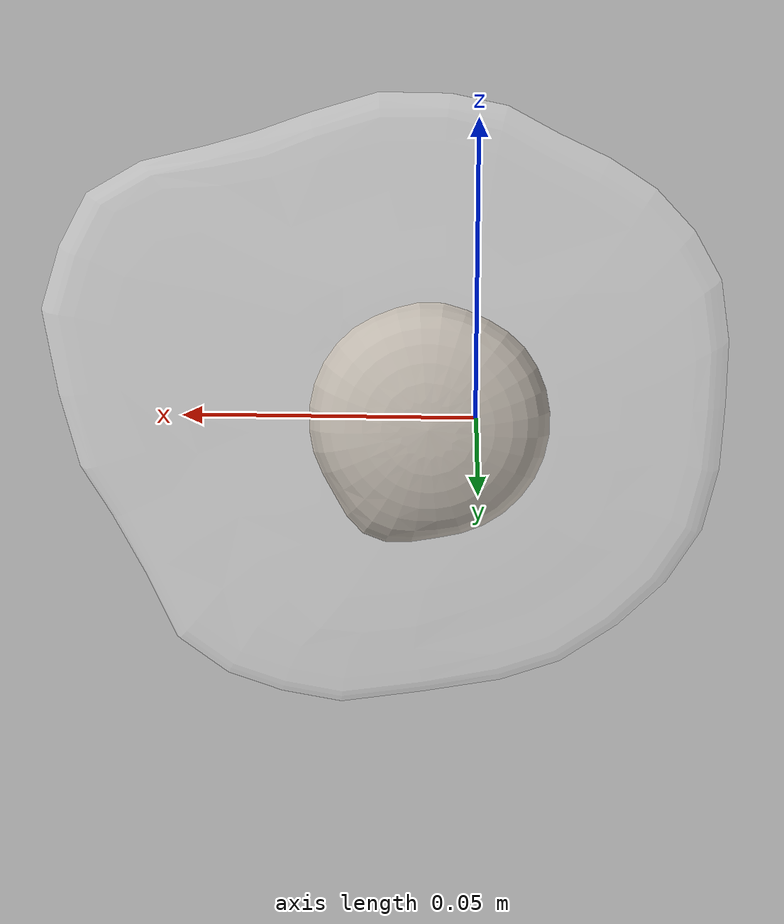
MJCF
<mujoco model="Egg_Cracked_3">
  <compiler autolimits="true" boundmass="0.01" angle="radian"/>
  <default>
    <default class="/">
      <default class="__VISUAL_MJT__">
        <geom contype="0" conaffinity="0" group="0"/>
      </default>
      <default class="__STRUCTURAL_MJT__">
        <geom contype="8" conaffinity="15" group="4" friction="0.90000000000000002 0.90000000000000002 0.001" solref="0.025000000000000001 1" solimp="0.998 0.998 0.001"/>
      </default>
      <default class="__DYNAMIC_MJT__">
        <geom contype="1" conaffinity="15" group="4" friction="0.90000000000000002 0.90000000000000002 0.001" solref="0.025000000000000001 1" solimp="0.998 0.998 0.001"/>
      </default>
    </default>
  </default>
  <asset>
    <texture name="Fried_Egg_White_Uncooked_Mat" type="2d" file="Fried_Egg_AlbedoTransparency.png"/>
    <material name="material_Fried_Egg_White_Uncooked_Mat" class="/" texture="Fried_Egg_White_Uncooked_Mat" specular="0.5" shininess="0.5" rgba="1 1 1 0.5"/>
    <texture name="Fried_Egg_Yolk_Mat" type="2d" file="Fried_Egg_AlbedoTransparency.png"/>
    <material name="material_Fried_Egg_Yolk_Mat" class="/" texture="Fried_Egg_Yolk_Mat" specular="0.5" shininess="0.5" rgba="1 1 1 1"/>
    <mesh name="Egg_Cracked_3_fried_egg_3_0" class="/" file="Egg_Cracked_3_fried_egg_3/Egg_Cracked_3_fried_egg_3_0.obj" scale="1 1 1"/>
    <mesh name="Egg_Cracked_3_fried_egg_3_1" class="/" file="Egg_Cracked_3_fried_egg_3/Egg_Cracked_3_fried_egg_3_1.obj" scale="1 1 1"/>
  </asset>
  <worldbody>
    <body name="Egg_Cracked_3">
      <joint name="Egg_Cracked_3_free" class="/" type="free" pos="0 0 0" axis="0 0 1" stiffness="0" range="0 0" armature="0" damping="0.10000000000000001" frictionloss="0"/>
      <body name="Egg_Cracked_3_fried_egg_3" pos="0.0080199999999999994 -0.01023 -0.00214" quat="1 0 0 0">
        <geom name="Egg_Cracked_3_fried_egg_3_0" class="__VISUAL_MJT__" type="mesh" material="material_Fried_Egg_White_Uncooked_Mat" shellinertia="false" mesh="Egg_Cracked_3_fried_egg_3_0"/>
        <geom name="Egg_Cracked_3_fried_egg_3_1" class="__VISUAL_MJT__" type="mesh" material="material_Fried_Egg_Yolk_Mat" shellinertia="false" mesh="Egg_Cracked_3_fried_egg_3_1"/>
        <geom name="Egg_Cracked_3_PrimitiveCollider_0" class="__DYNAMIC_MJT__" type="box" size="0.060546491295099258 0.010231256484985352 0.056569710373878479" rgba="0 1 0 1" pos="0.0080158822238445282 0.010231256484985352 0.0021351426839828491" quat="1 0 0 0"/>
      </body>
    </body>
  </worldbody>
</mujoco>
